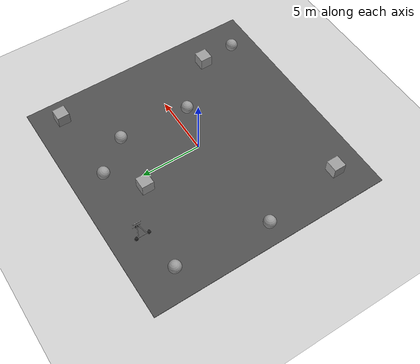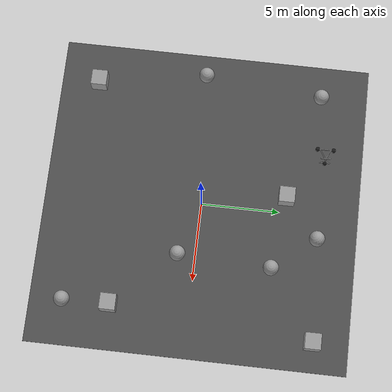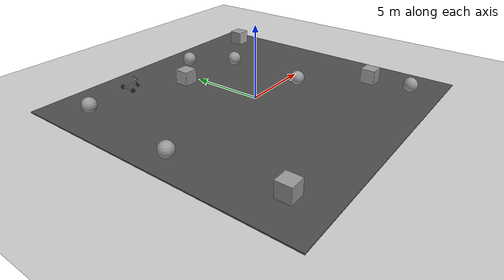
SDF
<sdf version="1.6">
 <world name="default">
  <light name="sun" type="directional">
   <pose>0 0 10 0 -0 0</pose>
   <diffuse>0.8 0.8 0.8 1</diffuse>
   <specular>0.2 0.2 0.2 1</specular>
   <attenuation>
    <range>1000</range>
    <constant>0.9</constant>
    <linear>0.01</linear>
    <quadratic>0.001</quadratic>
   </attenuation>
   <direction>-0.5 0.1 -0.9</direction>
  </light>
  <model name="ground_plane">
   <static>1</static>
   <link name="link">
    <collision name="collision">
     <geometry><plane><normal>0 0 1</normal><size>100 100</size></plane></geometry>
     <surface><friction><ode><mu>100</mu><mu2>50</mu2></ode></friction></surface>
    </collision>
    <visual name="visual">
     <cast_shadows>0</cast_shadows>
     <geometry><plane><normal>0 0 1</normal><size>100 100</size></plane></geometry>
     <material>
      <script><uri>file://media/materials/scripts/gazebo.material</uri><name>Gazebo/Grey</name></script>
     </material>
    </visual>
   </link>
  </model>
  <gravity>0 0 -9.8</gravity>
  <magnetic_field>6e-06 2.3e-05 -4.2e-05</magnetic_field>
  <atmosphere type="adiabatic"/>
  <physics name="default_physics" default="0" type="ode">
   <max_step_size>0.001</max_step_size>
   <real_time_factor>1</real_time_factor>
   <real_time_update_rate>1000</real_time_update_rate>
  </physics>
  <scene><ambient>0.4 0.4 0.4 1</ambient><background>0.7 0.7 0.7 1</background><shadows>1</shadows></scene>
  <audio><device>default</device></audio>
  <spherical_coordinates>
   <surface_model>EARTH_WGS84</surface_model>
   <latitude_deg>0</latitude_deg>
   <longitude_deg>0</longitude_deg>
   <elevation>0</elevation>
   <heading_deg>0</heading_deg>
  </spherical_coordinates>
  <model name="asphalt_plane">
   <static>1</static>
   <link name="link">
    <collision name="collision"><geometry><box><size>20 20 0.1</size></box></geometry></collision>
    <visual name="visual">
     <cast_shadows>0</cast_shadows>
     <geometry><box><size>20 20 0.1</size></box></geometry>
     <material>
      <script>
       <uri>model://asphalt_plane/materials/scripts</uri>
       <uri>model://asphalt_plane/materials/textures</uri>
       <name>vrc/asphalt</name>
      </script>
     </material>
    </visual>
   </link>
   <pose>-0.120985 0.010377 0 0 -0 0</pose>
  </model>
  <model name="unit_box">
   <pose>6.99994 -5 0.550002 -4e-06 0 9.3e-05</pose>
   <link name="link">
    <inertial>
     <mass>1</mass>
     <inertia>
      <ixx>0.166667</ixx>
      <ixy>0</ixy>
      <ixz>0</ixz>
      <iyy>0.166667</iyy>
      <iyz>0</iyz>
      <izz>0.166667</izz>
     </inertia>
    </inertial>
    <collision name="collision"><geometry><box><size>1 1 1</size></box></geometry></collision>
    <visual name="visual">
     <geometry><box><size>1 1 1</size></box></geometry>
     <material>
      <script><name>Gazebo/Grey</name><uri>file://media/materials/scripts/gazebo.material</uri></script>
     </material>
    </visual>
   </link>
  </model>
  <model name="unit_box_0">
   <pose>-0.996014 5.35675 0.550002 -4e-06 -0 0.000103</pose>
   <link name="link">
    <inertial>
     <mass>1</mass>
     <inertia>
      <ixx>0.166667</ixx>
      <ixy>0</ixy>
      <ixz>0</ixz>
      <iyy>0.166667</iyy>
      <iyz>0</iyz>
      <izz>0.166667</izz>
     </inertia>
    </inertial>
    <collision name="collision"><geometry><box><size>1 1 1</size></box></geometry></collision>
    <visual name="visual">
     <geometry><box><size>1 1 1</size></box></geometry>
     <material>
      <script><name>Gazebo/Grey</name><uri>file://media/materials/scripts/gazebo.material</uri></script>
     </material>
    </visual>
   </link>
  </model>
  <model name="unit_box_1">
   <pose>-7.50006 -7.5 0.550002 -4e-06 -0 0.000106</pose>
   <link name="link">
    <inertial>
     <mass>1</mass>
     <inertia>
      <ixx>0.166667</ixx>
      <ixy>0</ixy>
      <ixz>0</ixz>
      <iyy>0.166667</iyy>
      <iyz>0</iyz>
      <izz>0.166667</izz>
     </inertia>
    </inertial>
    <collision name="collision"><geometry><box><size>1 1 1</size></box></geometry></collision>
    <visual name="visual">
     <geometry><box><size>1 1 1</size></box></geometry>
     <material>
      <script><name>Gazebo/Grey</name><uri>file://media/materials/scripts/gazebo.material</uri></script>
     </material>
    </visual>
   </link>
  </model>
  <model name="unit_box_2">
   <pose>8.02542 7.74253 0.549998 -5e-06 -0 0.004076</pose>
   <link name="link">
    <inertial>
     <mass>1</mass>
     <inertia>
      <ixx>0.166667</ixx>
      <ixy>0</ixy>
      <ixz>0</ixz>
      <iyy>0.166667</iyy>
      <iyz>0</iyz>
      <izz>0.166667</izz>
     </inertia>
    </inertial>
    <collision name="collision"><geometry><box><size>1 1 1</size></box></geometry></collision>
    <visual name="visual">
     <geometry><box><size>1 1 1</size></box></geometry>
     <material>
      <script><name>Gazebo/Grey</name><uri>file://media/materials/scripts/gazebo.material</uri></script>
     </material>
    </visual>
   </link>
  </model>
  <model name="Apriltag36_11_00000">
   <link name="main">
    <visual name="main_Visual">
     <geometry><box><size>1 1 0.01</size></box></geometry>
     <material>
      <script>
       <uri>model://Apriltag36_11_00000/materials/scripts</uri>
       <uri>model://Apriltag36_11_00000/materials/textures</uri>
       <name>Apriltag36_11_00000</name>
      </script>
     </material>
    </visual>
   </link>
   <static>1</static>
   <pose>6.49477 -5.00022 0.548581 0 -1.57079 0</pose>
  </model>
  <model name="Apriltag36_11_00001">
   <link name="main">
    <visual name="main_Visual">
     <geometry><box><size>1 1 0.01</size></box></geometry>
     <material>
      <script>
       <uri>model://Apriltag36_11_00001/materials/scripts</uri>
       <uri>model://Apriltag36_11_00001/materials/textures</uri>
       <name>Apriltag36_11_00001</name>
      </script>
     </material>
    </visual>
   </link>
   <static>1</static>
   <pose>-1.50121 5.35642 0.547403 0 -1.57079 0</pose>
  </model>
  <model name="Apriltag36_11_00002">
   <link name="main">
    <visual name="main_Visual">
     <geometry><box><size>1 1 0.01</size></box></geometry>
     <material>
      <script>
       <uri>model://Apriltag36_11_00002/materials/scripts</uri>
       <uri>model://Apriltag36_11_00002/materials/textures</uri>
       <name>Apriltag36_11_00002</name>
      </script>
     </material>
    </visual>
   </link>
   <static>1</static>
   <pose>8.0227 7.23683 0.550001 1.57079 -1.57079 -6e-06</pose>
  </model>
  <model name="Apriltag36_11_00003">
   <link name="main">
    <visual name="main_Visual">
     <geometry><box><size>1 1 0.01</size></box></geometry>
     <material>
      <script>
       <uri>model://Apriltag36_11_00003/materials/scripts</uri>
       <uri>model://Apriltag36_11_00003/materials/textures</uri>
       <name>Apriltag36_11_00003</name>
      </script>
     </material>
    </visual>
   </link>
   <static>1</static>
   <pose>-7.5 -7 0.55 1.57079 1.57079 0</pose>
  </model>
  <model name="unit_sphere_2">
   <pose>3.42736 -1.12816 0.55 0 -0 0</pose>
   <link name="link">
    <inertial>
     <mass>1</mass>
     <inertia><ixx>0.1</ixx><ixy>0</ixy><ixz>0</ixz><iyy>0.1</iyy><iyz>0</iyz><izz>0.1</izz></inertia>
    </inertial>
    <collision name="collision"><geometry><sphere><radius>0.5</radius></sphere></geometry></collision>
    <visual name="visual">
     <geometry><sphere><radius>0.5</radius></sphere></geometry>
     <material>
      <script><name>Gazebo/Grey</name><uri>file://media/materials/scripts/gazebo.material</uri></script>
     </material>
    </visual>
   </link>
  </model>
  <model name="unit_sphere_6">
   <pose>7.06169 -7.90962 0.55 0 -0 0</pose>
   <link name="link">
    <inertial>
     <mass>1</mass>
     <inertia><ixx>0.1</ixx><ixy>0</ixy><ixz>0</ixz><iyy>0.1</iyy><iyz>0</iyz><izz>0.1</izz></inertia>
    </inertial>
    <collision name="collision"><geometry><sphere><radius>0.5</radius></sphere></geometry></collision>
    <visual name="visual">
     <geometry><sphere><radius>0.5</radius></sphere></geometry>
     <material>
      <script><name>Gazebo/Grey</name><uri>file://media/materials/scripts/gazebo.material</uri></script>
     </material>
    </visual>
   </link>
  </model>
  <model name="unit_sphere_10">
   <pose>3.70607 4.78017 0.55 0 -0 0</pose>
   <link name="link">
    <inertial>
     <mass>1</mass>
     <inertia><ixx>0.1</ixx><ixy>0</ixy><ixz>0</ixz><iyy>0.1</iyy><iyz>0</iyz><izz>0.1</izz></inertia>
    </inertial>
    <collision name="collision"><geometry><sphere><radius>0.5</radius></sphere></geometry></collision>
    <visual name="visual">
     <geometry><sphere><radius>0.5</radius></sphere></geometry>
     <material>
      <script><name>Gazebo/Grey</name><uri>file://media/materials/scripts/gazebo.material</uri></script>
     </material>
    </visual>
   </link>
  </model>
  <model name="unit_sphere_11">
   <pose>1.55079 7.49257 0.55 0.475228 -0.10735 -0.378258</pose>
   <link name="link">
    <inertial>
     <mass>1</mass>
     <inertia><ixx>0.1</ixx><ixy>0</ixy><ixz>0</ixz><iyy>0.1</iyy><iyz>0</iyz><izz>0.1</izz></inertia>
    </inertial>
    <collision name="collision"><geometry><sphere><radius>0.5</radius></sphere></geometry></collision>
    <visual name="visual">
     <geometry><sphere><radius>0.5</radius></sphere></geometry>
     <material>
      <script><name>Gazebo/Grey</name><uri>file://media/materials/scripts/gazebo.material</uri></script>
     </material>
    </visual>
   </link>
  </model>
  <model name="unit_sphere_16">
   <pose>-8.59524 -0.576642 0.55 0 -0 0</pose>
   <link name="link">
    <inertial>
     <mass>1</mass>
     <inertia><ixx>0.1</ixx><ixy>0</ixy><ixz>0</ixz><iyy>0.1</iyy><iyz>0</iyz><izz>0.1</izz></inertia>
    </inertial>
    <collision name="collision"><geometry><sphere><radius>0.5</radius></sphere></geometry></collision>
    <visual name="visual">
     <geometry><sphere><radius>0.5</radius></sphere></geometry>
     <material>
      <script><name>Gazebo/Grey</name><uri>file://media/materials/scripts/gazebo.material</uri></script>
     </material>
    </visual>
   </link>
  </model>
  <model name="unit_sphere_17">
   <pose>-7.89464 7.00189 0.55 -0.174719 -0.007518 -0.427479</pose>
   <link name="link">
    <inertial>
     <mass>1</mass>
     <inertia><ixx>0.1</ixx><ixy>0</ixy><ixz>0</ixz><iyy>0.1</iyy><iyz>0</iyz><izz>0.1</izz></inertia>
    </inertial>
    <collision name="collision"><geometry><sphere><radius>0.5</radius></sphere></geometry></collision>
    <visual name="visual">
     <geometry><sphere><radius>0.5</radius></sphere></geometry>
     <material>
      <script><name>Gazebo/Grey</name><uri>file://media/materials/scripts/gazebo.material</uri></script>
     </material>
    </visual>
   </link>
  </model>
  <model name="trisphere_cycle">
   <link name="frame">
    <pose>-0.408559 0 0.385023 0 -0.522021 0</pose>
    <inertial>
     <mass>10</mass>
     <inertia><ixx>0.228</ixx><iyy>0.743521</iyy><izz>0.965521</izz><ixy>0</ixy><ixz>0</ixz><iyz>0</iyz></inertia>
    </inertial>
    <collision name="axle_collision">
     <pose>-0.471335 0 0 1.5708 -0 0</pose>
     <geometry><cylinder><length>1.03923</length><radius>0.03</radius></cylinder></geometry>
    </collision>
    <visual name="axle_visual">
     <pose>-0.471335 0 0 1.5708 -0 0</pose>
     <geometry><cylinder><length>1.03923</length><radius>0.03</radius></cylinder></geometry>
     <material>
      <script><uri>file://media/materials/scripts/gazebo.material</uri><name>Gazebo/Grey</name></script>
     </material>
    </visual>
    <collision name="frame_left_collision">
     <pose>0 0.171552 0 -2.79253 1.57079 3.14159</pose>
     <geometry><cylinder><length>1.00317</length><radius>0.03</radius></cylinder></geometry>
    </collision>
    <visual name="frame_left_visual">
     <pose>0 0.171552 0 -2.79253 1.57079 3.14159</pose>
     <geometry><cylinder><length>1.00317</length><radius>0.03</radius></cylinder></geometry>
     <material>
      <script><uri>file://media/materials/scripts/gazebo.material</uri><name>Gazebo/Grey</name></script>
     </material>
    </visual>
    <collision name="frame_right_collision">
     <pose>0 -0.171552 0 2.79253 1.57079 -3.14159</pose>
     <geometry><cylinder><length>1.00317</length><radius>0.03</radius></cylinder></geometry>
    </collision>
    <visual name="frame_right_visual">
     <pose>0 -0.171552 0 2.79253 1.57079 -3.14159</pose>
     <geometry><cylinder><length>1.00317</length><radius>0.03</radius></cylinder></geometry>
     <material>
      <script><uri>file://media/materials/scripts/gazebo.material</uri><name>Gazebo/Grey</name></script>
     </material>
    </visual>
   </link>
   <link name="fork">
    <pose>0.041441 0 0.385023 0 -0.174533 0</pose>
    <inertial>
     <mass>3</mass>
     <inertia>
      <ixx>0.158203</ixx>
      <iyy>0.0583594</iyy>
      <izz>0.102656</izz>
      <ixy>0</ixy>
      <ixz>0</ixz>
      <iyz>0</iyz>
     </inertia>
    </inertial>
    <collision name="handlebars_collision">
     <pose>0 0 0.397748 1.5708 -0 0</pose>
     <geometry><cylinder><length>0.636396</length><radius>0.0375</radius></cylinder></geometry>
    </collision>
    <visual name="handlebars_visual">
     <pose>0 0 0.397748 1.5708 -0 0</pose>
     <geometry><cylinder><length>0.636396</length><radius>0.0375</radius></cylinder></geometry>
     <material>
      <script><uri>file://media/materials/scripts/gazebo.material</uri><name>Gazebo/Grey</name></script>
     </material>
    </visual>
    <collision name="headtube_collision">
     <pose>0 0 0.238649 0 -0 0</pose>
     <geometry><cylinder><length>0.318198</length><radius>0.0375</radius></cylinder></geometry>
    </collision>
    <visual name="headtube_visual">
     <pose>0 0 0.238649 0 -0 0</pose>
     <geometry><cylinder><length>0.318198</length><radius>0.0375</radius></cylinder></geometry>
     <material>
      <script><uri>file://media/materials/scripts/gazebo.material</uri><name>Gazebo/Grey</name></script>
     </material>
    </visual>
    <collision name="spindle_collision">
     <pose>0 0 -0.238649 1.5708 -0 0</pose>
     <geometry><cylinder><length>0.636396</length><radius>0.015</radius></cylinder></geometry>
    </collision>
    <visual name="spindle_visual">
     <pose>0 0 -0.238649 1.5708 -0 0</pose>
     <geometry><cylinder><length>0.636396</length><radius>0.015</radius></cylinder></geometry>
     <material>
      <script><uri>file://media/materials/scripts/gazebo.material</uri><name>Gazebo/Grey</name></script>
     </material>
    </visual>
    <collision name="fork_left_collision">
     <pose>0 0.159099 -0.07955 0.785398 -0 0</pose>
     <geometry><cylinder><length>0.45</length><radius>0.0375</radius></cylinder></geometry>
    </collision>
    <visual name="fork_left_visual">
     <pose>0 0.159099 -0.07955 0.785398 -0 0</pose>
     <geometry><cylinder><length>0.45</length><radius>0.0375</radius></cylinder></geometry>
     <material>
      <script><uri>file://media/materials/scripts/gazebo.material</uri><name>Gazebo/Grey</name></script>
     </material>
    </visual>
    <collision name="fork_right_collision">
     <pose>0 -0.159099 -0.07955 -0.785398 0 0</pose>
     <geometry><cylinder><length>0.45</length><radius>0.0375</radius></cylinder></geometry>
    </collision>
    <visual name="fork_right_visual">
     <pose>0 -0.159099 -0.07955 -0.785398 0 0</pose>
     <geometry><cylinder><length>0.45</length><radius>0.0375</radius></cylinder></geometry>
     <material>
      <script><uri>file://media/materials/scripts/gazebo.material</uri><name>Gazebo/Grey</name></script>
     </material>
    </visual>
   </link>
   <link name="wheel_front">
    <pose>0.082882 0 0.15 0 -0 0</pose>
    <inertial>
     <mass>0.5</mass>
     <inertia><ixx>0.0045</ixx><iyy>0.0045</iyy><izz>0.0045</izz><ixy>0</ixy><ixz>0</ixz><iyz>0</iyz></inertia>
    </inertial>
    <collision name="collision">
     <geometry><sphere><radius>0.15</radius></sphere></geometry>
     <surface><contact><ode><kp>1e+08</kp><kd>1</kd><min_depth>0.0005</min_depth></ode></contact></surface>
    </collision>
    <visual name="visual">
     <geometry><sphere><radius>0.15</radius></sphere></geometry>
     <material>
      <script><uri>file://media/materials/scripts/gazebo.material</uri><name>Gazebo/Black</name></script>
     </material>
    </visual>
   </link>
   <joint name="wheel_front_steer" type="revolute">
    <parent>frame</parent>
    <child>fork</child>
    <axis>
     <xyz>0 0 1</xyz>
     <limit><lower>-0.959931</lower><upper>0.959931</upper></limit>
     <use_parent_model_frame>0</use_parent_model_frame>
     <dynamics><spring_reference>0</spring_reference><spring_stiffness>0</spring_stiffness></dynamics>
    </axis>
   </joint>
   <joint name="wheel_front_spin" type="revolute">
    <parent>fork</parent>
    <child>wheel_front</child>
    <axis>
     <xyz>0 1 0</xyz>
     <use_parent_model_frame>0</use_parent_model_frame>
     <limit><lower>-1e+16</lower><upper>1e+16</upper></limit>
     <dynamics><spring_reference>0</spring_reference><spring_stiffness>0</spring_stiffness></dynamics>
    </axis>
   </joint>
   <link name="wheel_rear_left">
    <pose>-0.817118 0.519615 0.15 0 -0 0</pose>
    <inertial>
     <mass>0.5</mass>
     <inertia><ixx>0.0045</ixx><iyy>0.0045</iyy><izz>0.0045</izz><ixy>0</ixy><ixz>0</ixz><iyz>0</iyz></inertia>
    </inertial>
    <collision name="collision">
     <geometry><sphere><radius>0.15</radius></sphere></geometry>
     <surface><contact><ode><kp>1e+08</kp><kd>1</kd><min_depth>0.0005</min_depth></ode></contact></surface>
    </collision>
    <visual name="visual">
     <geometry><sphere><radius>0.15</radius></sphere></geometry>
     <material>
      <script><uri>file://media/materials/scripts/gazebo.material</uri><name>Gazebo/Black</name></script>
     </material>
    </visual>
   </link>
   <joint name="wheel_rear_left_spin" type="revolute">
    <parent>frame</parent>
    <child>wheel_rear_left</child>
    <axis>
     <xyz>0 1 0</xyz>
     <use_parent_model_frame>0</use_parent_model_frame>
     <limit><lower>-1e+16</lower><upper>1e+16</upper></limit>
     <dynamics><spring_reference>0</spring_reference><spring_stiffness>0</spring_stiffness></dynamics>
    </axis>
   </joint>
   <link name="wheel_rear_right">
    <pose>-0.817118 -0.519615 0.15 0 -0 0</pose>
    <inertial>
     <mass>0.5</mass>
     <inertia><ixx>0.0045</ixx><iyy>0.0045</iyy><izz>0.0045</izz><ixy>0</ixy><ixz>0</ixz><iyz>0</iyz></inertia>
    </inertial>
    <collision name="collision">
     <geometry><sphere><radius>0.15</radius></sphere></geometry>
     <surface><contact><ode><kp>1e+08</kp><kd>1</kd><min_depth>0.0005</min_depth></ode></contact></surface>
    </collision>
    <visual name="visual">
     <geometry><sphere><radius>0.15</radius></sphere></geometry>
     <material>
      <script><uri>file://media/materials/scripts/gazebo.material</uri><name>Gazebo/Black</name></script>
     </material>
    </visual>
   </link>
   <joint name="wheel_rear_right_spin" type="revolute">
    <parent>frame</parent>
    <child>wheel_rear_right</child>
    <axis>
     <xyz>0 1 0</xyz>
     <use_parent_model_frame>0</use_parent_model_frame>
     <limit><lower>-1e+16</lower><upper>1e+16</upper></limit>
     <dynamics><spring_reference>0</spring_reference><spring_stiffness>0</spring_stiffness></dynamics>
    </axis>
   </joint>
   <pose>-3.62775 7.59478 0.049499 0 1e-06 0.00497</pose>
  </model>
 </world>
</sdf>
